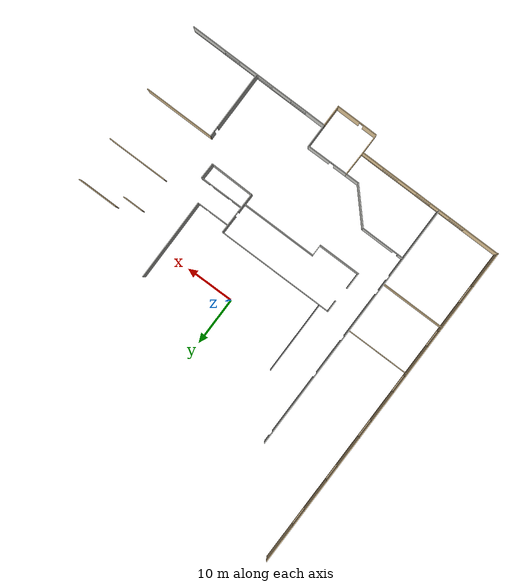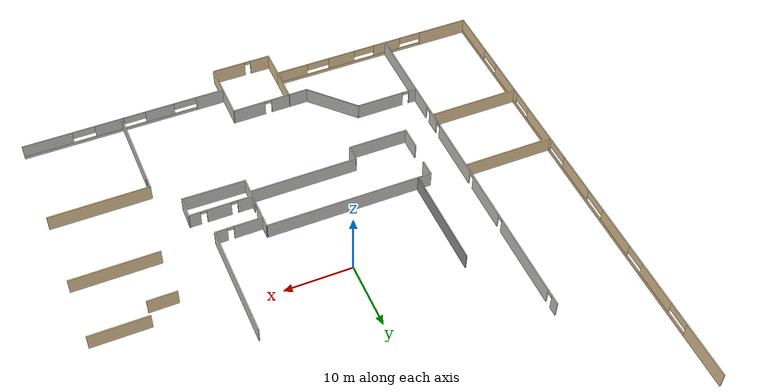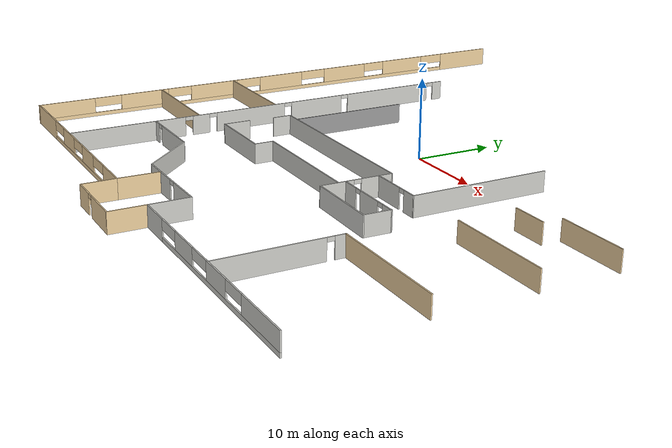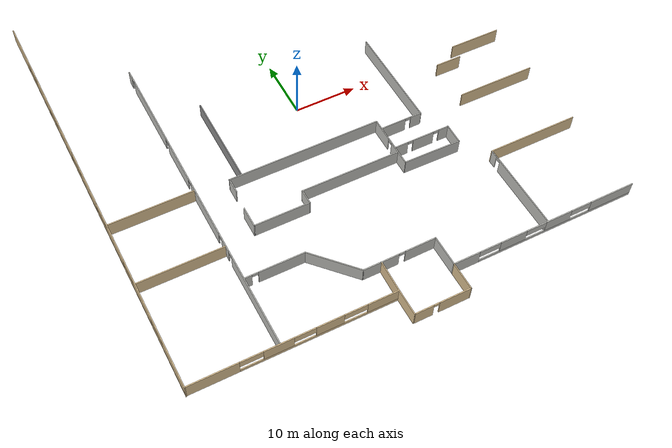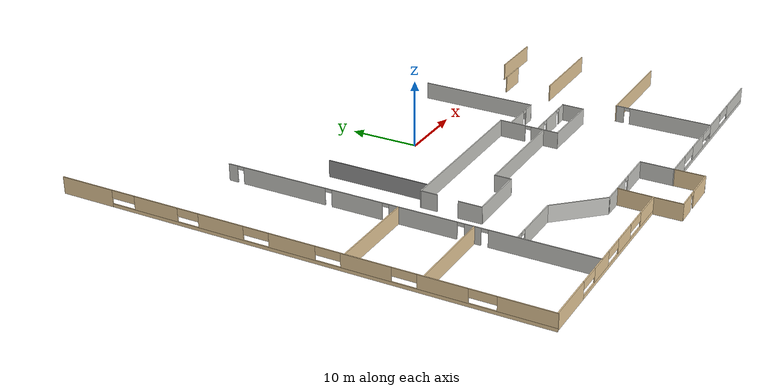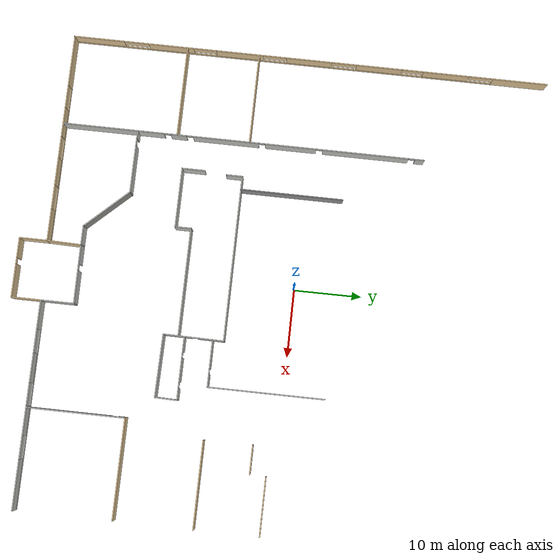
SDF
<sdf version="1.6">
 <model name="Building">
  <pose>0.649204 -3.2026 0 0 -0 0</pose>
  <link name="Wall_10">
   <pose>-19.5795 -33.75 0 0 -0 0</pose>
   <visual name="Wall_10_Visual_0">
    <pose>-11.9192 0 1.25 0 -0 0</pose>
    <geometry><box><size>7.66158 0.15 2.5</size></box></geometry>
    <material>
     <script><uri>file://media/materials/scripts/gazebo.material</uri><name>Gazebo/Grey</name></script>
     <ambient>0.921569 0.807843 0.615686 1</ambient>
    </material>
    <meta><layer>0</layer></meta>
   </visual>
   <collision name="Wall_10_Collision_0">
    <geometry><box><size>7.66158 0.15 2.5</size></box></geometry>
    <pose>-11.9192 0 1.25 0 -0 0</pose>
   </collision>
   <visual name="Wall_10_Visual_1">
    <pose>3.83079 0 0.25 0 -0 0</pose>
    <geometry><box><size>23.8384 0.15 0.5</size></box></geometry>
    <material>
     <script><uri>file://media/materials/scripts/gazebo.material</uri><name>Gazebo/Grey</name></script>
     <ambient>0.921569 0.807843 0.615686 1</ambient>
    </material>
    <meta><layer>0</layer></meta>
   </visual>
   <collision name="Wall_10_Collision_1">
    <geometry><box><size>23.8384 0.15 0.5</size></box></geometry>
    <pose>3.83079 0 0.25 0 -0 0</pose>
   </collision>
   <visual name="Wall_10_Visual_2">
    <pose>-2.41376 0 1.5 0 -0 0</pose>
    <geometry><box><size>4.46303 0.15 2</size></box></geometry>
    <material>
     <script><uri>file://media/materials/scripts/gazebo.material</uri><name>Gazebo/Grey</name></script>
     <ambient>0.921569 0.807843 0.615686 1</ambient>
    </material>
    <meta><layer>0</layer></meta>
   </visual>
   <collision name="Wall_10_Collision_2">
    <geometry><box><size>4.46303 0.15 2</size></box></geometry>
    <pose>-2.41376 0 1.5 0 -0 0</pose>
   </collision>
   <visual name="Wall_10_Visual_3">
    <pose>5.19728 0 1.5 0 -0 0</pose>
    <geometry><box><size>4.24144 0.15 2</size></box></geometry>
    <material>
     <script><uri>file://media/materials/scripts/gazebo.material</uri><name>Gazebo/Grey</name></script>
     <ambient>0.921569 0.807843 0.615686 1</ambient>
    </material>
    <meta><layer>0</layer></meta>
   </visual>
   <collision name="Wall_10_Collision_3">
    <geometry><box><size>4.24144 0.15 2</size></box></geometry>
    <pose>5.19728 0 1.5 0 -0 0</pose>
   </collision>
   <visual name="Wall_10_Visual_4">
    <pose>13.3049 0 1.5 0 -0 0</pose>
    <geometry><box><size>4.89016 0.15 2</size></box></geometry>
    <material>
     <script><uri>file://media/materials/scripts/gazebo.material</uri><name>Gazebo/Grey</name></script>
     <ambient>0.921569 0.807843 0.615686 1</ambient>
    </material>
    <meta><layer>0</layer></meta>
   </visual>
   <collision name="Wall_10_Collision_4">
    <geometry><box><size>4.89016 0.15 2</size></box></geometry>
    <pose>13.3049 0 1.5 0 -0 0</pose>
   </collision>
   <visual name="Wall_10_Visual_5">
    <pose>-6.36685 0 1.9 0 -0 0</pose>
    <geometry><box><size>3.44314 0.15 1.2</size></box></geometry>
    <material>
     <script><uri>file://media/materials/scripts/gazebo.material</uri><name>Gazebo/Grey</name></script>
     <ambient>0.921569 0.807843 0.615686 1</ambient>
    </material>
    <meta><layer>0</layer></meta>
   </visual>
   <collision name="Wall_10_Collision_5">
    <geometry><box><size>3.44314 0.15 1.2</size></box></geometry>
    <pose>-6.36685 0 1.9 0 -0 0</pose>
   </collision>
   <visual name="Wall_10_Visual_6">
    <pose>1.44716 0 1.9 0 -0 0</pose>
    <geometry><box><size>3.25881 0.15 1.2</size></box></geometry>
    <material>
     <script><uri>file://media/materials/scripts/gazebo.material</uri><name>Gazebo/Grey</name></script>
     <ambient>0.921569 0.807843 0.615686 1</ambient>
    </material>
    <meta><layer>0</layer></meta>
   </visual>
   <collision name="Wall_10_Collision_6">
    <geometry><box><size>3.25881 0.15 1.2</size></box></geometry>
    <pose>1.44716 0 1.9 0 -0 0</pose>
   </collision>
   <visual name="Wall_10_Visual_7">
    <pose>9.08892 0 1.9 0 -0 0</pose>
    <geometry><box><size>3.54184 0.15 1.2</size></box></geometry>
    <material>
     <script><uri>file://media/materials/scripts/gazebo.material</uri><name>Gazebo/Grey</name></script>
     <ambient>0.921569 0.807843 0.615686 1</ambient>
    </material>
    <meta><layer>0</layer></meta>
   </visual>
   <collision name="Wall_10_Collision_7">
    <geometry><box><size>3.54184 0.15 1.2</size></box></geometry>
    <pose>9.08892 0 1.9 0 -0 0</pose>
   </collision>
  </link>
  <link name="Wall_100">
   <pose>12.7391 -11.9796 0 0 -0 3.14159</pose>
   <visual name="Wall_100_Visual_0">
    <pose>-3.75183 0 1.25 0 -0 0</pose>
    <geometry><box><size>1.74633 0.15 2.5</size></box></geometry>
    <material>
     <script><uri>file://media/materials/scripts/gazebo.material</uri><name>Gazebo/CeilingTiled</name></script>
     <ambient>1 1 1 1</ambient>
    </material>
    <meta><layer>0</layer></meta>
   </visual>
   <collision name="Wall_100_Collision_0">
    <geometry><box><size>1.74633 0.15 2.5</size></box></geometry>
    <pose>-3.75183 0 1.25 0 -0 0</pose>
   </collision>
   <visual name="Wall_100_Visual_1">
    <pose>-0.201089 0 1.25 0 -0 0</pose>
    <geometry><box><size>3.55516 0.15 2.5</size></box></geometry>
    <material>
     <script><uri>file://media/materials/scripts/gazebo.material</uri><name>Gazebo/CeilingTiled</name></script>
     <ambient>1 1 1 1</ambient>
    </material>
    <meta><layer>0</layer></meta>
   </visual>
   <collision name="Wall_100_Collision_1">
    <geometry><box><size>3.55516 0.15 2.5</size></box></geometry>
    <pose>-0.201089 0 1.25 0 -0 0</pose>
   </collision>
   <visual name="Wall_100_Visual_2">
    <pose>3.55075 0 1.25 0 -0 0</pose>
    <geometry><box><size>2.14851 0.15 2.5</size></box></geometry>
    <material>
     <script><uri>file://media/materials/scripts/gazebo.material</uri><name>Gazebo/CeilingTiled</name></script>
     <ambient>1 1 1 1</ambient>
    </material>
    <meta><layer>0</layer></meta>
   </visual>
   <collision name="Wall_100_Collision_2">
    <geometry><box><size>2.14851 0.15 2.5</size></box></geometry>
    <pose>3.55075 0 1.25 0 -0 0</pose>
   </collision>
   <visual name="Wall_100_Visual_3">
    <pose>-2.42867 0 2.25 0 -0 0</pose>
    <geometry><box><size>0.9 0.15 0.5</size></box></geometry>
    <material>
     <script><uri>file://media/materials/scripts/gazebo.material</uri><name>Gazebo/CeilingTiled</name></script>
     <ambient>1 1 1 1</ambient>
    </material>
    <meta><layer>0</layer></meta>
   </visual>
   <collision name="Wall_100_Collision_3">
    <geometry><box><size>0.9 0.15 0.5</size></box></geometry>
    <pose>-2.42867 0 2.25 0 -0 0</pose>
   </collision>
   <visual name="Wall_100_Visual_4">
    <pose>2.02649 0 2.25 0 -0 0</pose>
    <geometry><box><size>0.9 0.15 0.5</size></box></geometry>
    <material>
     <script><uri>file://media/materials/scripts/gazebo.material</uri><name>Gazebo/CeilingTiled</name></script>
     <ambient>1 1 1 1</ambient>
    </material>
    <meta><layer>0</layer></meta>
   </visual>
   <collision name="Wall_100_Collision_4">
    <geometry><box><size>0.9 0.15 0.5</size></box></geometry>
    <pose>2.02649 0 2.25 0 -0 0</pose>
   </collision>
  </link>
  <link name="Wall_105">
   <collision name="Wall_105_Collision">
    <geometry><box><size>4.25 0.15 2.5</size></box></geometry>
    <pose>0 0 1.25 0 -0 0</pose>
   </collision>
   <visual name="Wall_105_Visual">
    <pose>0 0 1.25 0 -0 0</pose>
    <geometry><box><size>4.25 0.15 2.5</size></box></geometry>
    <material>
     <script><uri>file://media/materials/scripts/gazebo.material</uri><name>Gazebo/Grey</name></script>
     <ambient>0.921569 0.807843 0.615686 1</ambient>
    </material>
    <meta><layer>0</layer></meta>
   </visual>
   <pose>24.6252 -0.368503 0 0 -0 0</pose>
  </link>
  <link name="Wall_109">
   <collision name="Wall_109_Collision">
    <geometry><box><size>8.5 0.15 2.5</size></box></geometry>
    <pose>0 0 1.25 0 -0 0</pose>
   </collision>
   <visual name="Wall_109_Visual">
    <pose>0 0 1.25 0 -0 0</pose>
    <geometry><box><size>8.5 0.15 2.5</size></box></geometry>
    <material>
     <script><uri>file://media/materials/scripts/gazebo.material</uri><name>Gazebo/Grey</name></script>
     <ambient>0.921569 0.807843 0.615686 1</ambient>
    </material>
    <meta><layer>0</layer></meta>
   </visual>
   <pose>31.0591 1.97974 0 0 -0 0</pose>
  </link>
  <link name="Wall_11">
   <collision name="Wall_11_Collision">
    <geometry><box><size>4.25 0.15 2.5</size></box></geometry>
    <pose>0 0 1.25 0 -0 0</pose>
   </collision>
   <visual name="Wall_11_Visual">
    <pose>0 0 1.25 0 -0 0</pose>
    <geometry><box><size>4.25 0.15 2.5</size></box></geometry>
    <material>
     <script><uri>file://media/materials/scripts/gazebo.material</uri><name>Gazebo/Grey</name></script>
     <ambient>0.921569 0.807843 0.615686 1</ambient>
    </material>
    <meta><layer>0</layer></meta>
   </visual>
   <pose>-3.9045 -35.8 0 0 0 -1.5708</pose>
  </link>
  <link name="Wall_12">
   <pose>0.520502 -37.85 0 0 -0 0</pose>
   <visual name="Wall_12_Visual_0">
    <pose>-2.96768 0 1.25 0 -0 0</pose>
    <geometry><box><size>3.06464 0.15 2.5</size></box></geometry>
    <material>
     <script><uri>file://media/materials/scripts/gazebo.material</uri><name>Gazebo/Grey</name></script>
     <ambient>0.921569 0.807843 0.615686 1</ambient>
    </material>
    <meta><layer>0</layer></meta>
   </visual>
   <collision name="Wall_12_Collision_0">
    <geometry><box><size>3.06464 0.15 2.5</size></box></geometry>
    <pose>-2.96768 0 1.25 0 -0 0</pose>
   </collision>
   <visual name="Wall_12_Visual_1">
    <pose>1.98232 0 1.25 0 -0 0</pose>
    <geometry><box><size>5.03536 0.15 2.5</size></box></geometry>
    <material>
     <script><uri>file://media/materials/scripts/gazebo.material</uri><name>Gazebo/Grey</name></script>
     <ambient>0.921569 0.807843 0.615686 1</ambient>
    </material>
    <meta><layer>0</layer></meta>
   </visual>
   <collision name="Wall_12_Collision_1">
    <geometry><box><size>5.03536 0.15 2.5</size></box></geometry>
    <pose>1.98232 0 1.25 0 -0 0</pose>
   </collision>
   <visual name="Wall_12_Visual_2">
    <pose>-0.985361 0 2.25 0 -0 0</pose>
    <geometry><box><size>0.9 0.15 0.5</size></box></geometry>
    <material>
     <script><uri>file://media/materials/scripts/gazebo.material</uri><name>Gazebo/Grey</name></script>
     <ambient>0.921569 0.807843 0.615686 1</ambient>
    </material>
    <meta><layer>0</layer></meta>
   </visual>
   <collision name="Wall_12_Collision_2">
    <geometry><box><size>0.9 0.15 0.5</size></box></geometry>
    <pose>-0.985361 0 2.25 0 -0 0</pose>
   </collision>
  </link>
  <link name="Wall_13">
   <collision name="Wall_13_Collision">
    <geometry><box><size>4.5 0.15 2.5</size></box></geometry>
    <pose>0 0 1.25 0 -0 0</pose>
   </collision>
   <visual name="Wall_13_Visual">
    <pose>0 0 1.25 0 -0 0</pose>
    <geometry><box><size>4.5 0.15 2.5</size></box></geometry>
    <material>
     <script><uri>file://media/materials/scripts/gazebo.material</uri><name>Gazebo/Grey</name></script>
     <ambient>0.921569 0.807843 0.615686 1</ambient>
    </material>
    <meta><layer>0</layer></meta>
   </visual>
   <pose>4.9455 -35.675 0 0 -0 1.5708</pose>
  </link>
  <link name="Wall_14">
   <pose>20.1205 -33.5 0 0 -0 0</pose>
   <visual name="Wall_14_Visual_0">
    <pose>-13.0855 0 1.25 0 -0 0</pose>
    <geometry><box><size>4.3291 0.15 2.5</size></box></geometry>
    <material>
     <script><uri>file://media/materials/scripts/gazebo.material</uri><name>Gazebo/CeilingTiled</name></script>
     <ambient>0.921569 0.807843 0.615686 1</ambient>
    </material>
    <meta><layer>0</layer></meta>
   </visual>
   <collision name="Wall_14_Collision_0">
    <geometry><box><size>4.3291 0.15 2.5</size></box></geometry>
    <pose>-13.0855 0 1.25 0 -0 0</pose>
   </collision>
   <visual name="Wall_14_Visual_1">
    <pose>2.16455 0 0.25 0 -0 0</pose>
    <geometry><box><size>26.1709 0.15 0.5</size></box></geometry>
    <material>
     <script><uri>file://media/materials/scripts/gazebo.material</uri><name>Gazebo/CeilingTiled</name></script>
     <ambient>0.921569 0.807843 0.615686 1</ambient>
    </material>
    <meta><layer>0</layer></meta>
   </visual>
   <collision name="Wall_14_Collision_1">
    <geometry><box><size>26.1709 0.15 0.5</size></box></geometry>
    <pose>2.16455 0 0.25 0 -0 0</pose>
   </collision>
   <visual name="Wall_14_Visual_2">
    <pose>-5.28013 0 1.5 0 -0 0</pose>
    <geometry><box><size>4.37212 0.15 2</size></box></geometry>
    <material>
     <script><uri>file://media/materials/scripts/gazebo.material</uri><name>Gazebo/CeilingTiled</name></script>
     <ambient>0.921569 0.807843 0.615686 1</ambient>
    </material>
    <meta><layer>0</layer></meta>
   </visual>
   <collision name="Wall_14_Collision_2">
    <geometry><box><size>4.37212 0.15 2</size></box></geometry>
    <pose>-5.28013 0 1.5 0 -0 0</pose>
   </collision>
   <visual name="Wall_14_Visual_3">
    <pose>2.38651 0 1.5 0 -0 0</pose>
    <geometry><box><size>4.32635 0.15 2</size></box></geometry>
    <material>
     <script><uri>file://media/materials/scripts/gazebo.material</uri><name>Gazebo/CeilingTiled</name></script>
     <ambient>0.921569 0.807843 0.615686 1</ambient>
    </material>
    <meta><layer>0</layer></meta>
   </visual>
   <collision name="Wall_14_Collision_3">
    <geometry><box><size>4.32635 0.15 2</size></box></geometry>
    <pose>2.38651 0 1.5 0 -0 0</pose>
   </collision>
   <visual name="Wall_14_Visual_4">
    <pose>11.5814 0 1.5 0 -0 0</pose>
    <geometry><box><size>7.33714 0.15 2</size></box></geometry>
    <material>
     <script><uri>file://media/materials/scripts/gazebo.material</uri><name>Gazebo/CeilingTiled</name></script>
     <ambient>0.921569 0.807843 0.615686 1</ambient>
    </material>
    <meta><layer>0</layer></meta>
   </visual>
   <collision name="Wall_14_Collision_4">
    <geometry><box><size>7.33714 0.15 2</size></box></geometry>
    <pose>11.5814 0 1.5 0 -0 0</pose>
   </collision>
   <visual name="Wall_14_Visual_5">
    <pose>-9.19355 0 1.9 0 -0 0</pose>
    <geometry><box><size>3.45472 0.15 1.2</size></box></geometry>
    <material>
     <script><uri>file://media/materials/scripts/gazebo.material</uri><name>Gazebo/CeilingTiled</name></script>
     <ambient>0.921569 0.807843 0.615686 1</ambient>
    </material>
    <meta><layer>0</layer></meta>
   </visual>
   <collision name="Wall_14_Collision_5">
    <geometry><box><size>3.45472 0.15 1.2</size></box></geometry>
    <pose>-9.19355 0 1.9 0 -0 0</pose>
   </collision>
   <visual name="Wall_14_Visual_6">
    <pose>-1.43537 0 1.9 0 -0 0</pose>
    <geometry><box><size>3.3174 0.15 1.2</size></box></geometry>
    <material>
     <script><uri>file://media/materials/scripts/gazebo.material</uri><name>Gazebo/CeilingTiled</name></script>
     <ambient>0.921569 0.807843 0.615686 1</ambient>
    </material>
    <meta><layer>0</layer></meta>
   </visual>
   <collision name="Wall_14_Collision_6">
    <geometry><box><size>3.3174 0.15 1.2</size></box></geometry>
    <pose>-1.43537 0 1.9 0 -0 0</pose>
   </collision>
   <visual name="Wall_14_Visual_7">
    <pose>6.23127 0 1.9 0 -0 0</pose>
    <geometry><box><size>3.36317 0.15 1.2</size></box></geometry>
    <material>
     <script><uri>file://media/materials/scripts/gazebo.material</uri><name>Gazebo/CeilingTiled</name></script>
     <ambient>0.921569 0.807843 0.615686 1</ambient>
    </material>
    <meta><layer>0</layer></meta>
   </visual>
   <collision name="Wall_14_Collision_7">
    <geometry><box><size>3.36317 0.15 1.2</size></box></geometry>
    <pose>6.23127 0 1.9 0 -0 0</pose>
   </collision>
  </link>
  <link name="Wall_181">
   <pose>8.05273 -10.6417 0 0 -0 1.55946</pose>
   <visual name="Wall_181_Visual_0">
    <pose>-2.4226 0 1.25 0 -0 0</pose>
    <geometry><box><size>4.1635 0.15 2.5</size></box></geometry>
    <material>
     <script><uri>file://media/materials/scripts/gazebo.material</uri><name>Gazebo/CeilingTiled</name></script>
     <ambient>1 1 1 1</ambient>
    </material>
    <meta><layer>0</layer></meta>
   </visual>
   <collision name="Wall_181_Collision_0">
    <geometry><box><size>4.1635 0.15 2.5</size></box></geometry>
    <pose>-2.4226 0 1.25 0 -0 0</pose>
   </collision>
   <visual name="Wall_181_Visual_1">
    <pose>2.53175 0 1.25 0 -0 0</pose>
    <geometry><box><size>3.94519 0.15 2.5</size></box></geometry>
    <material>
     <script><uri>file://media/materials/scripts/gazebo.material</uri><name>Gazebo/CeilingTiled</name></script>
     <ambient>1 1 1 1</ambient>
    </material>
    <meta><layer>0</layer></meta>
   </visual>
   <collision name="Wall_181_Collision_1">
    <geometry><box><size>3.94519 0.15 2.5</size></box></geometry>
    <pose>2.53175 0 1.25 0 -0 0</pose>
   </collision>
   <visual name="Wall_181_Visual_2">
    <pose>0.109156 0 2.25 0 -0 0</pose>
    <geometry><box><size>0.9 0.15 0.5</size></box></geometry>
    <material>
     <script><uri>file://media/materials/scripts/gazebo.material</uri><name>Gazebo/CeilingTiled</name></script>
     <ambient>1 1 1 1</ambient>
    </material>
    <meta><layer>0</layer></meta>
   </visual>
   <collision name="Wall_181_Collision_2">
    <geometry><box><size>0.9 0.15 0.5</size></box></geometry>
    <pose>0.109156 0 2.25 0 -0 0</pose>
   </collision>
  </link>
  <link name="Wall_2">
   <pose>-35.329 1.98049 0 0 0 -1.5708</pose>
   <visual name="Wall_2_Visual_0">
    <pose>-31.7867 0 1.25 0 -0 0</pose>
    <geometry><box><size>8.1767 0.15 2.5</size></box></geometry>
    <material>
     <script><uri>file://media/materials/scripts/gazebo.material</uri><name>Gazebo/Grey</name></script>
     <ambient>0.921569 0.807843 0.615686 1</ambient>
    </material>
    <meta><layer>0</layer></meta>
   </visual>
   <collision name="Wall_2_Collision_0">
    <geometry><box><size>8.1767 0.15 2.5</size></box></geometry>
    <pose>-31.7867 0 1.25 0 -0 0</pose>
   </collision>
   <visual name="Wall_2_Visual_1">
    <pose>4.08835 0 0.25 0 -0 0</pose>
    <geometry><box><size>63.5733 0.15 0.5</size></box></geometry>
    <material>
     <script><uri>file://media/materials/scripts/gazebo.material</uri><name>Gazebo/Grey</name></script>
     <ambient>0.921569 0.807843 0.615686 1</ambient>
    </material>
    <meta><layer>0</layer></meta>
   </visual>
   <collision name="Wall_2_Collision_1">
    <geometry><box><size>63.5733 0.15 0.5</size></box></geometry>
    <pose>4.08835 0 0.25 0 -0 0</pose>
   </collision>
   <visual name="Wall_2_Visual_2">
    <pose>-20.6272 0 1.5 0 -0 0</pose>
    <geometry><box><size>6.88516 0.15 2</size></box></geometry>
    <material>
     <script><uri>file://media/materials/scripts/gazebo.material</uri><name>Gazebo/Grey</name></script>
     <ambient>0.921569 0.807843 0.615686 1</ambient>
    </material>
    <meta><layer>0</layer></meta>
   </visual>
   <collision name="Wall_2_Collision_2">
    <geometry><box><size>6.88516 0.15 2</size></box></geometry>
    <pose>-20.6272 0 1.5 0 -0 0</pose>
   </collision>
   <visual name="Wall_2_Visual_3">
    <pose>-10.487 0 1.5 0 -0 0</pose>
    <geometry><box><size>6.88516 0.15 2</size></box></geometry>
    <material>
     <script><uri>file://media/materials/scripts/gazebo.material</uri><name>Gazebo/Grey</name></script>
     <ambient>0.921569 0.807843 0.615686 1</ambient>
    </material>
    <meta><layer>0</layer></meta>
   </visual>
   <collision name="Wall_2_Collision_3">
    <geometry><box><size>6.88516 0.15 2</size></box></geometry>
    <pose>-10.487 0 1.5 0 -0 0</pose>
   </collision>
   <visual name="Wall_2_Visual_4">
    <pose>0.140779 0 1.5 0 -0 0</pose>
    <geometry><box><size>6.7931 0.15 2</size></box></geometry>
    <material>
     <script><uri>file://media/materials/scripts/gazebo.material</uri><name>Gazebo/Grey</name></script>
     <ambient>0.921569 0.807843 0.615686 1</ambient>
    </material>
    <meta><layer>0</layer></meta>
   </visual>
   <collision name="Wall_2_Collision_4">
    <geometry><box><size>6.7931 0.15 2</size></box></geometry>
    <pose>0.140779 0 1.5 0 -0 0</pose>
   </collision>
   <visual name="Wall_2_Visual_5">
    <pose>10.6748 0 1.5 0 -0 0</pose>
    <geometry><box><size>7.0604 0.15 2</size></box></geometry>
    <material>
     <script><uri>file://media/materials/scripts/gazebo.material</uri><name>Gazebo/Grey</name></script>
     <ambient>0.921569 0.807843 0.615686 1</ambient>
    </material>
    <meta><layer>0</layer></meta>
   </visual>
   <collision name="Wall_2_Collision_5">
    <geometry><box><size>7.0604 0.15 2</size></box></geometry>
    <pose>10.6748 0 1.5 0 -0 0</pose>
   </collision>
   <visual name="Wall_2_Visual_6">
    <pose>21.0585 0 1.5 0 -0 0</pose>
    <geometry><box><size>6.84339 0.15 2</size></box></geometry>
    <material>
     <script><uri>file://media/materials/scripts/gazebo.material</uri><name>Gazebo/Grey</name></script>
     <ambient>0.921569 0.807843 0.615686 1</ambient>
    </material>
    <meta><layer>0</layer></meta>
   </visual>
   <collision name="Wall_2_Collision_6">
    <geometry><box><size>6.84339 0.15 2</size></box></geometry>
    <pose>21.0585 0 1.5 0 -0 0</pose>
   </collision>
   <visual name="Wall_2_Visual_7">
    <pose>32.0339 0 1.5 0 -0 0</pose>
    <geometry><box><size>7.68221 0.15 2</size></box></geometry>
    <material>
     <script><uri>file://media/materials/scripts/gazebo.material</uri><name>Gazebo/Grey</name></script>
     <ambient>0.921569 0.807843 0.615686 1</ambient>
    </material>
    <meta><layer>0</layer></meta>
   </visual>
   <collision name="Wall_2_Collision_7">
    <geometry><box><size>7.68221 0.15 2</size></box></geometry>
    <pose>32.0339 0 1.5 0 -0 0</pose>
   </collision>
   <visual name="Wall_2_Visual_8">
    <pose>-25.884 0 1.9 0 -0 0</pose>
    <geometry><box><size>3.62857 0.15 1.2</size></box></geometry>
    <material>
     <script><uri>file://media/materials/scripts/gazebo.material</uri><name>Gazebo/Grey</name></script>
     <ambient>0.921569 0.807843 0.615686 1</ambient>
    </material>
    <meta><layer>0</layer></meta>
   </visual>
   <collision name="Wall_2_Collision_8">
    <geometry><box><size>3.62857 0.15 1.2</size></box></geometry>
    <pose>-25.884 0 1.9 0 -0 0</pose>
   </collision>
   <visual name="Wall_2_Visual_9">
    <pose>-15.5571 0 1.9 0 -0 0</pose>
    <geometry><box><size>3.25498 0.15 1.2</size></box></geometry>
    <material>
     <script><uri>file://media/materials/scripts/gazebo.material</uri><name>Gazebo/Grey</name></script>
     <ambient>0.921569 0.807843 0.615686 1</ambient>
    </material>
    <meta><layer>0</layer></meta>
   </visual>
   <collision name="Wall_2_Collision_9">
    <geometry><box><size>3.25498 0.15 1.2</size></box></geometry>
    <pose>-15.5571 0 1.9 0 -0 0</pose>
   </collision>
   <visual name="Wall_2_Visual_10">
    <pose>-5.15011 0 1.9 0 -0 0</pose>
    <geometry><box><size>3.78867 0.15 1.2</size></box></geometry>
    <material>
     <script><uri>file://media/materials/scripts/gazebo.material</uri><name>Gazebo/Grey</name></script>
     <ambient>0.921569 0.807843 0.615686 1</ambient>
    </material>
    <meta><layer>0</layer></meta>
   </visual>
   <collision name="Wall_2_Collision_10">
    <geometry><box><size>3.78867 0.15 1.2</size></box></geometry>
    <pose>-5.15011 0 1.9 0 -0 0</pose>
   </collision>
   <visual name="Wall_2_Visual_11">
    <pose>5.34097 0 1.9 0 -0 0</pose>
    <geometry><box><size>3.60729 0.15 1.2</size></box></geometry>
    <material>
     <script><uri>file://media/materials/scripts/gazebo.material</uri><name>Gazebo/Grey</name></script>
     <ambient>0.921569 0.807843 0.615686 1</ambient>
    </material>
    <meta><layer>0</layer></meta>
   </visual>
   <collision name="Wall_2_Collision_11">
    <geometry><box><size>3.60729 0.15 1.2</size></box></geometry>
    <pose>5.34097 0 1.9 0 -0 0</pose>
   </collision>
   <visual name="Wall_2_Visual_12">
    <pose>15.9209 0 1.9 0 -0 0</pose>
    <geometry><box><size>3.43183 0.15 1.2</size></box></geometry>
    <material>
     <script><uri>file://media/materials/scripts/gazebo.material</uri><name>Gazebo/Grey</name></script>
     <ambient>0.921569 0.807843 0.615686 1</ambient>
    </material>
    <meta><layer>0</layer></meta>
   </visual>
   <collision name="Wall_2_Collision_12">
    <geometry><box><size>3.43183 0.15 1.2</size></box></geometry>
    <pose>15.9209 0 1.9 0 -0 0</pose>
   </collision>
   <visual name="Wall_2_Visual_13">
    <pose>26.3365 0 1.9 0 -0 0</pose>
    <geometry><box><size>3.71256 0.15 1.2</size></box></geometry>
    <material>
     <script><uri>file://media/materials/scripts/gazebo.material</uri><name>Gazebo/Grey</name></script>
     <ambient>0.921569 0.807843 0.615686 1</ambient>
    </material>
    <meta><layer>0</layer></meta>
   </visual>
   <collision name="Wall_2_Collision_13">
    <geometry><box><size>3.71256 0.15 1.2</size></box></geometry>
    <pose>26.3365 0 1.9 0 -0 0</pose>
   </collision>
  </link>
  <link name="Wall_42">
   <collision name="Wall_42_Collision">
    <geometry><box><size>12.75 0.15 2.5</size></box></geometry>
    <pose>0 0 1.25 0 -0 0</pose>
   </collision>
   <visual name="Wall_42_Visual">
    <pose>0 0 1.25 0 -0 0</pose>
    <geometry><box><size>12.75 0.15 2.5</size></box></geometry>
    <material>
     <script><uri>file://media/materials/scripts/gazebo.material</uri><name>Gazebo/Grey</name></script>
     <ambient>0.921569 0.807843 0.615686 1</ambient>
    </material>
    <meta><layer>0</layer></meta>
   </visual>
   <pose>28.9541 -7.52341 0 0 -0 0</pose>
  </link>
  <link name="Wall_44">
   <collision name="Wall_44_Collision">
    <geometry><box><size>14.75 0.15 2.5</size></box></geometry>
    <pose>0 0 1.25 0 -0 0</pose>
   </collision>
   <visual name="Wall_44_Visual">
    <pose>0 0 1.25 0 -0 0</pose>
    <geometry><box><size>14.75 0.15 2.5</size></box></geometry>
    <material>
     <script><uri>file://media/materials/scripts/gazebo.material</uri><name>Gazebo/Grey</name></script>
     <ambient>0.921569 0.807843 0.615686 1</ambient>
    </material>
    <meta><layer>0</layer></meta>
   </visual>
   <pose>27.8973 -19.1114 0 0 -0 0</pose>
  </link>
  <link name="Wall_46">
   <pose>20.5973 -26.2864 0 0 0 -1.5708</pose>
   <visual name="Wall_46_Visual_0">
    <pose>-6.60084 0 1.25 0 -0 0</pose>
    <geometry><box><size>1.29831 0.15 2.5</size></box></geometry>
    <material>
     <script><uri>file://media/materials/scripts/gazebo.material</uri><name>Gazebo/CeilingTiled</name></script>
     <ambient>1 1 1 1</ambient>
    </material>
    <meta><layer>0</layer></meta>
   </visual>
   <collision name="Wall_46_Collision_0">
    <geometry><box><size>1.29831 0.15 2.5</size></box></geometry>
    <pose>-6.60084 0 1.25 0 -0 0</pose>
   </collision>
   <visual name="Wall_46_Visual_1">
    <pose>1.09916 0 1.25 0 -0 0</pose>
    <geometry><box><size>12.3017 0.15 2.5</size></box></geometry>
    <material>
     <script><uri>file://media/materials/scripts/gazebo.material</uri><name>Gazebo/CeilingTiled</name></script>
     <ambient>1 1 1 1</ambient>
    </material>
    <meta><layer>0</layer></meta>
   </visual>
   <collision name="Wall_46_Collision_1">
    <geometry><box><size>12.3017 0.15 2.5</size></box></geometry>
    <pose>1.09916 0 1.25 0 -0 0</pose>
   </collision>
   <visual name="Wall_46_Visual_2">
    <pose>-5.50169 0 2.25 0 -0 0</pose>
    <geometry><box><size>0.9 0.15 0.5</size></box></geometry>
    <material>
     <script><uri>file://media/materials/scripts/gazebo.material</uri><name>Gazebo/CeilingTiled</name></script>
     <ambient>1 1 1 1</ambient>
    </material>
    <meta><layer>0</layer></meta>
   </visual>
   <collision name="Wall_46_Collision_2">
    <geometry><box><size>0.9 0.15 0.5</size></box></geometry>
    <pose>-5.50169 0 2.25 0 -0 0</pose>
   </collision>
  </link>
  <link name="Wall_48">
   <pose>-21.778 -6.62477 0 0 -0 1.5708</pose>
   <visual name="Wall_48_Visual_0">
    <pose>-19.5242 0 1.25 0 -0 0</pose>
    <geometry><box><size>15.2016 0.15 2.5</size></box></geometry>
    <material>
     <script><uri>file://media/materials/scripts/gazebo.material</uri><name>Gazebo/CeilingTiled</name></script>
     <ambient>1 1 1 1</ambient>
    </material>
    <meta><layer>0</layer></meta>
   </visual>
   <collision name="Wall_48_Collision_0">
    <geometry><box><size>15.2016 0.15 2.5</size></box></geometry>
    <pose>-19.5242 0 1.25 0 -0 0</pose>
   </collision>
   <visual name="Wall_48_Visual_1">
    <pose>-9.74757 0 1.25 0 -0 0</pose>
    <geometry><box><size>2.35165 0.15 2.5</size></box></geometry>
    <material>
     <script><uri>file://media/materials/scripts/gazebo.material</uri><name>Gazebo/CeilingTiled</name></script>
     <ambient>1 1 1 1</ambient>
    </material>
    <meta><layer>0</layer></meta>
   </visual>
   <collision name="Wall_48_Collision_1">
    <geometry><box><size>2.35165 0.15 2.5</size></box></geometry>
    <pose>-9.74757 0 1.25 0 -0 0</pose>
   </collision>
   <visual name="Wall_48_Visual_2">
    <pose>-2.65076 0 1.25 0 -0 0</pose>
    <geometry><box><size>9.84197 0.15 2.5</size></box></geometry>
    <material>
     <script><uri>file://media/materials/scripts/gazebo.material</uri><name>Gazebo/CeilingTiled</name></script>
     <ambient>1 1 1 1</ambient>
    </material>
    <meta><layer>0</layer></meta>
   </visual>
   <collision name="Wall_48_Collision_2">
    <geometry><box><size>9.84197 0.15 2.5</size></box></geometry>
    <pose>-2.65076 0 1.25 0 -0 0</pose>
   </collision>
   <visual name="Wall_48_Visual_3">
    <pose>7.07473 0 1.25 0 -0 0</pose>
    <geometry><box><size>7.60901 0.15 2.5</size></box></geometry>
    <material>
     <script><uri>file://media/materials/scripts/gazebo.material</uri><name>Gazebo/CeilingTiled</name></script>
     <ambient>1 1 1 1</ambient>
    </material>
    <meta><layer>0</layer></meta>
   </visual>
   <collision name="Wall_48_Collision_3">
    <geometry><box><size>7.60901 0.15 2.5</size></box></geometry>
    <pose>7.07473 0 1.25 0 -0 0</pose>
   </collision>
   <visual name="Wall_48_Visual_4">
    <pose>18.3068 0 1.25 0 -0 0</pose>
    <geometry><box><size>12.8551 0.15 2.5</size></box></geometry>
    <material>
     <script><uri>file://media/materials/scripts/gazebo.material</uri><name>Gazebo/CeilingTiled</name></script>
     <ambient>1 1 1 1</ambient>
    </material>
    <meta><layer>0</layer></meta>
   </visual>
   <collision name="Wall_48_Collision_4">
    <geometry><box><size>12.8551 0.15 2.5</size></box></geometry>
    <pose>18.3068 0 1.25 0 -0 0</pose>
   </collision>
   <visual name="Wall_48_Visual_5">
    <pose>26.4297 0 1.25 0 -0 0</pose>
    <geometry><box><size>1.39064 0.15 2.5</size></box></geometry>
    <material>
     <script><uri>file://media/materials/scripts/gazebo.material</uri><name>Gazebo/CeilingTiled</name></script>
     <ambient>1 1 1 1</ambient>
    </material>
    <meta><layer>0</layer></meta>
   </visual>
   <collision name="Wall_48_Collision_5">
    <geometry><box><size>1.39064 0.15 2.5</size></box></geometry>
    <pose>26.4297 0 1.25 0 -0 0</pose>
   </collision>
   <visual name="Wall_48_Visual_6">
    <pose>-11.4234 0 2.25 0 -0 0</pose>
    <geometry><box><size>1 0.15 0.5</size></box></geometry>
    <material>
     <script><uri>file://media/materials/scripts/gazebo.material</uri><name>Gazebo/CeilingTiled</name></script>
     <ambient>1 1 1 1</ambient>
    </material>
    <meta><layer>0</layer></meta>
   </visual>
   <collision name="Wall_48_Collision_6">
    <geometry><box><size>1 0.15 0.5</size></box></geometry>
    <pose>-11.4234 0 2.25 0 -0 0</pose>
   </collision>
   <visual name="Wall_48_Visual_7">
    <pose>-8.07175 0 2.25 0 -0 0</pose>
    <geometry><box><size>1 0.15 0.5</size></box></geometry>
    <material>
     <script><uri>file://media/materials/scripts/gazebo.material</uri><name>Gazebo/CeilingTiled</name></script>
     <ambient>1 1 1 1</ambient>
    </material>
    <meta><layer>0</layer></meta>
   </visual>
   <collision name="Wall_48_Collision_7">
    <geometry><box><size>1 0.15 0.5</size></box></geometry>
    <pose>-8.07175 0 2.25 0 -0 0</pose>
   </collision>
   <visual name="Wall_48_Visual_8">
    <pose>2.77022 0 2.25 0 -0 0</pose>
    <geometry><box><size>1 0.15 0.5</size></box></geometry>
    <material>
     <script><uri>file://media/materials/scripts/gazebo.material</uri><name>Gazebo/CeilingTiled</name></script>
     <ambient>1 1 1 1</ambient>
    </material>
    <meta><layer>0</layer></meta>
   </visual>
   <collision name="Wall_48_Collision_8">
    <geometry><box><size>1 0.15 0.5</size></box></geometry>
    <pose>2.77022 0 2.25 0 -0 0</pose>
   </collision>
   <visual name="Wall_48_Visual_9">
    <pose>11.3792 0 2.25 0 -0 0</pose>
    <geometry><box><size>1 0.15 0.5</size></box></geometry>
    <material>
     <script><uri>file://media/materials/scripts/gazebo.material</uri><name>Gazebo/CeilingTiled</name></script>
     <ambient>1 1 1 1</ambient>
    </material>
    <meta><layer>0</layer></meta>
   </visual>
   <collision name="Wall_48_Collision_9">
    <geometry><box><size>1 0.15 0.5</size></box></geometry>
    <pose>11.3792 0 2.25 0 -0 0</pose>
   </collision>
   <visual name="Wall_48_Visual_10">
    <pose>25.2344 0 2.25 0 -0 0</pose>
    <geometry><box><size>1 0.15 0.5</size></box></geometry>
    <material>
     <script><uri>file://media/materials/scripts/gazebo.material</uri><name>Gazebo/CeilingTiled</name></script>
     <ambient>1 1 1 1</ambient>
    </material>
    <meta><layer>0</layer></meta>
   </visual>
   <collision name="Wall_48_Collision_10">
    <geometry><box><size>1 0.15 0.5</size></box></geometry>
    <pose>25.2344 0 2.25 0 -0 0</pose>
   </collision>
  </link>
  <link name="Wall_56">
   <collision name="Wall_56_Collision">
    <geometry><box><size>13.5 0.15 2.5</size></box></geometry>
    <pose>0 0 1.25 0 -0 0</pose>
   </collision>
   <visual name="Wall_56_Visual">
    <pose>0 0 1.25 0 -0 0</pose>
    <geometry><box><size>13.5 0.15 2.5</size></box></geometry>
    <material>
     <script><uri>file://media/materials/scripts/gazebo.material</uri><name>Gazebo/Grey</name></script>
     <ambient>0.921569 0.807843 0.615686 1</ambient>
    </material>
    <meta><layer>0</layer></meta>
   </visual>
   <pose>-28.5496 -5.72467 0 0 -0 0</pose>
  </link>
  <link name="Wall_58">
   <collision name="Wall_58_Collision">
    <geometry><box><size>13.5 0.15 2.5</size></box></geometry>
    <pose>0 0 1.25 0 -0 0</pose>
   </collision>
   <visual name="Wall_58_Visual">
    <pose>0 0 1.25 0 -0 0</pose>
    <geometry><box><size>13.5 0.15 2.5</size></box></geometry>
    <material>
     <script><uri>file://media/materials/scripts/gazebo.material</uri><name>Gazebo/Grey</name></script>
     <ambient>0.921569 0.807843 0.615686 1</ambient>
    </material>
    <meta><layer>0</layer></meta>
   </visual>
   <pose>-28.5707 -16.5913 0 0 -0 0</pose>
  </link>
  <link name="Wall_60">
   <pose>-17.0925 -22.5155 0 0 -0 0</pose>
   <visual name="Wall_60_Visual_0">
    <pose>-4.12823 0 1.25 0 -0 0</pose>
    <geometry><box><size>1.24353 0.15 2.5</size></box></geometry>
    <material>
     <script><uri>file://media/materials/scripts/gazebo.material</uri><name>Gazebo/CeilingTiled</name></script>
     <ambient>1 1 1 1</ambient>
    </material>
    <meta><layer>0</layer></meta>
   </visual>
   <collision name="Wall_60_Collision_0">
    <geometry><box><size>1.24353 0.15 2.5</size></box></geometry>
    <pose>-4.12823 0 1.25 0 -0 0</pose>
   </collision>
   <visual name="Wall_60_Visual_1">
    <pose>1.12177 0 1.25 0 -0 0</pose>
    <geometry><box><size>7.25647 0.15 2.5</size></box></geometry>
    <material>
     <script><uri>file://media/materials/scripts/gazebo.material</uri><name>Gazebo/CeilingTiled</name></script>
     <ambient>1 1 1 1</ambient>
    </material>
    <meta><layer>0</layer></meta>
   </visual>
   <collision name="Wall_60_Collision_1">
    <geometry><box><size>7.25647 0.15 2.5</size></box></geometry>
    <pose>1.12177 0 1.25 0 -0 0</pose>
   </collision>
   <visual name="Wall_60_Visual_2">
    <pose>-3.00647 0 2.25 0 -0 0</pose>
    <geometry><box><size>1 0.15 0.5</size></box></geometry>
    <material>
     <script><uri>file://media/materials/scripts/gazebo.material</uri><name>Gazebo/CeilingTiled</name></script>
     <ambient>1 1 1 1</ambient>
    </material>
    <meta><layer>0</layer></meta>
   </visual>
   <collision name="Wall_60_Collision_2">
    <geometry><box><size>1 0.15 0.5</size></box></geometry>
    <pose>-3.00647 0 2.25 0 -0 0</pose>
   </collision>
  </link>
  <link name="Wall_61">
   <collision name="Wall_61_Collision">
    <geometry><box><size>8.62706 0.15 2.5</size></box></geometry>
    <pose>0 0 1.25 0 -0 0</pose>
   </collision>
   <visual name="Wall_61_Visual">
    <pose>0 0 1.25 0 -0 0</pose>
    <geometry><box><size>8.62706 0.15 2.5</size></box></geometry>
    <material>
     <script><uri>file://media/materials/scripts/gazebo.material</uri><name>Gazebo/CeilingTiled</name></script>
     <ambient>1 1 1 1</ambient>
    </material>
    <meta><layer>0</layer></meta>
   </visual>
   <pose>-9.5277 -25.6162 0 0 0 -0.820597</pose>
  </link>
  <link name="Wall_62">
   <collision name="Wall_62_Collision">
    <geometry><box><size>3 0.15 2.5</size></box></geometry>
    <pose>0 0 1.25 0 -0 0</pose>
   </collision>
   <visual name="Wall_62_Visual">
    <pose>0 0 1.25 0 -0 0</pose>
    <geometry><box><size>3 0.15 2.5</size></box></geometry>
    <material>
     <script><uri>file://media/materials/scripts/gazebo.material</uri><name>Gazebo/CeilingTiled</name></script>
     <ambient>1 1 1 1</ambient>
    </material>
    <meta><layer>0</layer></meta>
   </visual>
   <pose>-5.21294 -28.7169 0 0 -0 0</pose>
  </link>
  <link name="Wall_63">
   <collision name="Wall_63_Collision">
    <geometry><box><size>5.18443 0.15 2.5</size></box></geometry>
    <pose>0 0 1.25 0 -0 0</pose>
   </collision>
   <visual name="Wall_63_Visual">
    <pose>0 0 1.25 0 -0 0</pose>
    <geometry><box><size>5.18443 0.15 2.5</size></box></geometry>
    <material>
     <script><uri>file://media/materials/scripts/gazebo.material</uri><name>Gazebo/Grey</name></script>
     <ambient>0.921569 0.807843 0.615686 1</ambient>
    </material>
    <meta><layer>0</layer></meta>
   </visual>
   <pose>-3.84622 -31.2335 0 0 0 -1.59395</pose>
  </link>
  <link name="Wall_68">
   <collision name="Wall_68_Collision">
    <geometry><box><size>5 0.15 2.5</size></box></geometry>
    <pose>0 0 1.25 0 -0 0</pose>
   </collision>
   <visual name="Wall_68_Visual">
    <pose>0 0 1.25 0 -0 0</pose>
    <geometry><box><size>5 0.15 2.5</size></box></geometry>
    <material>
     <script><uri>file://media/materials/scripts/gazebo.material</uri><name>Gazebo/CeilingTiled</name></script>
     <ambient>0.921569 0.807843 0.615686 1</ambient>
    </material>
    <meta><layer>0</layer></meta>
   </visual>
   <pose>4.9455 -31.075 0 0 -0 1.5708</pose>
  </link>
  <link name="Wall_70">
   <pose>0.51206 -28.6767 0 0 -0 0.009362</pose>
   <visual name="Wall_70_Visual_0">
    <pose>-2.93111 0 1.25 0 -0 0</pose>
    <geometry><box><size>2.88816 0.15 2.5</size></box></geometry>
    <material>
     <script><uri>file://media/materials/scripts/gazebo.material</uri><name>Gazebo/CeilingTiled</name></script>
     <ambient>1 1 1 1</ambient>
    </material>
    <meta><layer>0</layer></meta>
   </visual>
   <collision name="Wall_70_Collision_0">
    <geometry><box><size>2.88816 0.15 2.5</size></box></geometry>
    <pose>-2.93111 0 1.25 0 -0 0</pose>
   </collision>
   <visual name="Wall_70_Visual_1">
    <pose>1.94408 0 1.25 0 -0 0</pose>
    <geometry><box><size>4.86222 0.15 2.5</size></box></geometry>
    <material>
     <script><uri>file://media/materials/scripts/gazebo.material</uri><name>Gazebo/CeilingTiled</name></script>
     <ambient>1 1 1 1</ambient>
    </material>
    <meta><layer>0</layer></meta>
   </visual>
   <collision name="Wall_70_Collision_1">
    <geometry><box><size>4.86222 0.15 2.5</size></box></geometry>
    <pose>1.94408 0 1.25 0 -0 0</pose>
   </collision>
   <visual name="Wall_70_Visual_2">
    <pose>-0.987029 0 2.25 0 -0 0</pose>
    <geometry><box><size>1 0.15 0.5</size></box></geometry>
    <material>
     <script><uri>file://media/materials/scripts/gazebo.material</uri><name>Gazebo/CeilingTiled</name></script>
     <ambient>1 1 1 1</ambient>
    </material>
    <meta><layer>0</layer></meta>
   </visual>
   <collision name="Wall_70_Collision_2">
    <geometry><box><size>1 0.15 0.5</size></box></geometry>
    <pose>-0.987029 0 2.25 0 -0 0</pose>
   </collision>
  </link>
  <link name="Wall_85">
   <collision name="Wall_85_Collision">
    <geometry><box><size>15.25 0.15 2.5</size></box></geometry>
    <pose>0 0 1.25 0 -0 0</pose>
   </collision>
   <visual name="Wall_85_Visual">
    <pose>0 0 1.25 0 -0 0</pose>
    <geometry><box><size>15.25 0.15 2.5</size></box></geometry>
    <material>
     <script><uri>file://media/materials/scripts/gazebo.material</uri><name>Gazebo/Grey</name></script>
     <ambient>1 1 1 1</ambient>
    </material>
    <meta><layer>0</layer></meta>
   </visual>
   <pose>-14.5335 1.39994 0 0 0 -1.5708</pose>
  </link>
  <link name="Wall_87">
   <collision name="Wall_87_Collision">
    <geometry><box><size>17.25 0.15 2.5</size></box></geometry>
    <pose>0 0 1.25 0 -0 0</pose>
   </collision>
   <visual name="Wall_87_Visual">
    <pose>0 0 1.25 0 -0 0</pose>
    <geometry><box><size>17.25 0.15 2.5</size></box></geometry>
    <material>
     <script><uri>file://media/materials/scripts/gazebo.material</uri><name>Gazebo/CeilingTiled</name></script>
     <ambient>1 1 1 1</ambient>
    </material>
    <meta><layer>0</layer></meta>
   </visual>
   <pose>14.953 0.737402 0 0 0 -1.5708</pose>
  </link>
  <link name="Wall_88">
   <pose>11.528 -7.8218 0 0 0 -3.13891</pose>
   <visual name="Wall_88_Visual_0">
    <pose>-2.56309 0 1.25 0 -0 0</pose>
    <geometry><box><size>1.87384 0.15 2.5</size></box></geometry>
    <material>
     <script><uri>file://media/materials/scripts/gazebo.material</uri><name>Gazebo/CeilingTiled</name></script>
     <ambient>1 1 1 1</ambient>
    </material>
    <meta><layer>0</layer></meta>
   </visual>
   <collision name="Wall_88_Collision_0">
    <geometry><box><size>1.87384 0.15 2.5</size></box></geometry>
    <pose>-2.56309 0 1.25 0 -0 0</pose>
   </collision>
   <visual name="Wall_88_Visual_1">
    <pose>1.38692 0 1.25 0 -0 0</pose>
    <geometry><box><size>4.22618 0.15 2.5</size></box></geometry>
    <material>
     <script><uri>file://media/materials/scripts/gazebo.material</uri><name>Gazebo/CeilingTiled</name></script>
     <ambient>1 1 1 1</ambient>
    </material>
    <meta><layer>0</layer></meta>
   </visual>
   <collision name="Wall_88_Collision_1">
    <geometry><box><size>4.22618 0.15 2.5</size></box></geometry>
    <pose>1.38692 0 1.25 0 -0 0</pose>
   </collision>
   <visual name="Wall_88_Visual_2">
    <pose>-1.17617 0 2.25 0 -0 0</pose>
    <geometry><box><size>0.9 0.15 0.5</size></box></geometry>
    <material>
     <script><uri>file://media/materials/scripts/gazebo.material</uri><name>Gazebo/CeilingTiled</name></script>
     <ambient>1 1 1 1</ambient>
    </material>
    <meta><layer>0</layer></meta>
   </visual>
   <collision name="Wall_88_Collision_2">
    <geometry><box><size>0.9 0.15 0.5</size></box></geometry>
    <pose>-1.17617 0 2.25 0 -0 0</pose>
   </collision>
  </link>
  <link name="Wall_90">
   <collision name="Wall_90_Collision">
    <geometry><box><size>24.75 0.15 2.5</size></box></geometry>
    <pose>0 0 1.25 0 -0 0</pose>
   </collision>
   <visual name="Wall_90_Visual">
    <pose>0 0 1.25 0 -0 0</pose>
    <geometry><box><size>24.75 0.15 2.5</size></box></geometry>
    <material>
     <script><uri>file://media/materials/scripts/gazebo.material</uri><name>Gazebo/CeilingTiled</name></script>
     <ambient>1 1 1 1</ambient>
    </material>
    <meta><layer>0</layer></meta>
   </visual>
   <pose>-4.19704 -6.2126 0 0 -0 3.14159</pose>
  </link>
  <link name="Wall_91">
   <collision name="Wall_91_Collision">
    <geometry><box><size>2.5 0.15 2.5</size></box></geometry>
    <pose>0 0 1.25 0 -0 0</pose>
   </collision>
   <visual name="Wall_91_Visual">
    <pose>0 0 1.25 0 -0 0</pose>
    <geometry><box><size>2.5 0.15 2.5</size></box></geometry>
    <material>
     <script><uri>file://media/materials/scripts/gazebo.material</uri><name>Gazebo/CeilingTiled</name></script>
     <ambient>1 1 1 1</ambient>
    </material>
    <meta><layer>0</layer></meta>
   </visual>
   <pose>-16.497 -7.3876 0 0 0 -1.5708</pose>
  </link>
  <link name="Wall_93">
   <collision name="Wall_93_Collision">
    <geometry><box><size>3.5 0.15 2.5</size></box></geometry>
    <pose>0 0 1.25 0 -0 0</pose>
   </collision>
   <visual name="Wall_93_Visual">
    <pose>0 0 1.25 0 -0 0</pose>
    <geometry><box><size>3.5 0.15 2.5</size></box></geometry>
    <material>
     <script><uri>file://media/materials/scripts/gazebo.material</uri><name>Gazebo/CeilingTiled</name></script>
     <ambient>1 1 1 1</ambient>
    </material>
    <meta><layer>0</layer></meta>
   </visual>
   <pose>-16.7851 -13.5579 0 0 0 -1.5708</pose>
  </link>
  <link name="Wall_94">
   <collision name="Wall_94_Collision">
    <geometry><box><size>9 0.15 2.5</size></box></geometry>
    <pose>0 0 1.25 0 -0 0</pose>
   </collision>
   <visual name="Wall_94_Visual">
    <pose>0 0 1.25 0 -0 0</pose>
    <geometry><box><size>9 0.15 2.5</size></box></geometry>
    <material>
     <script><uri>file://media/materials/scripts/gazebo.material</uri><name>Gazebo/CeilingTiled</name></script>
     <ambient>1 1 1 1</ambient>
    </material>
    <meta><layer>0</layer></meta>
   </visual>
   <pose>-12.3601 -15.2329 0 0 -0 0</pose>
  </link>
  <link name="Wall_95">
   <collision name="Wall_95_Collision">
    <geometry><box><size>2.5 0.15 2.5</size></box></geometry>
    <pose>0 0 1.25 0 -0 0</pose>
   </collision>
   <visual name="Wall_95_Visual">
    <pose>0 0 1.25 0 -0 0</pose>
    <geometry><box><size>2.5 0.15 2.5</size></box></geometry>
    <material>
     <script><uri>file://media/materials/scripts/gazebo.material</uri><name>Gazebo/CeilingTiled</name></script>
     <ambient>1 1 1 1</ambient>
    </material>
    <meta><layer>0</layer></meta>
   </visual>
   <pose>-7.93507 -14.0579 0 0 -0 1.5708</pose>
  </link>
  <link name="Wall_96">
   <collision name="Wall_96_Collision">
    <geometry><box><size>16 0.15 2.5</size></box></geometry>
    <pose>0 0 1.25 0 -0 0</pose>
   </collision>
   <visual name="Wall_96_Visual">
    <pose>0 0 1.25 0 -0 0</pose>
    <geometry><box><size>16 0.15 2.5</size></box></geometry>
    <material>
     <script><uri>file://media/materials/scripts/gazebo.material</uri><name>Gazebo/CeilingTiled</name></script>
     <ambient>1 1 1 1</ambient>
    </material>
    <meta><layer>0</layer></meta>
   </visual>
   <pose>-0.010075 -12.8829 0 0 -0 0</pose>
  </link>
  <link name="Wall_98">
   <collision name="Wall_98_Collision">
    <geometry><box><size>9.36426 0.15 2.5</size></box></geometry>
    <pose>0 0 1.25 0 -0 0</pose>
   </collision>
   <visual name="Wall_98_Visual">
    <pose>0 0 1.25 0 -0 0</pose>
    <geometry><box><size>9.36426 0.15 2.5</size></box></geometry>
    <material>
     <script><uri>file://media/materials/scripts/gazebo.material</uri><name>Gazebo/CeilingTiled</name></script>
     <ambient>1 1 1 1</ambient>
    </material>
    <meta><layer>0</layer></meta>
   </visual>
   <pose>12.6095 -15.1397 0 0 0 -0.014972</pose>
  </link>
  <link name="Wall_99">
   <collision name="Wall_99_Collision">
    <geometry><box><size>3.35576 0.15 2.5</size></box></geometry>
    <pose>0 0 1.25 0 -0 0</pose>
   </collision>
   <visual name="Wall_99_Visual">
    <pose>0 0 1.25 0 -0 0</pose>
    <geometry><box><size>3.35576 0.15 2.5</size></box></geometry>
    <material>
     <script><uri>file://media/materials/scripts/gazebo.material</uri><name>Gazebo/CeilingTiled</name></script>
     <ambient>1 1 1 1</ambient>
    </material>
    <meta><layer>0</layer></meta>
   </visual>
   <pose>17.2528 -13.5578 0 0 -0 1.54815</pose>
  </link>
  <static>1</static>
 </model>
</sdf>
